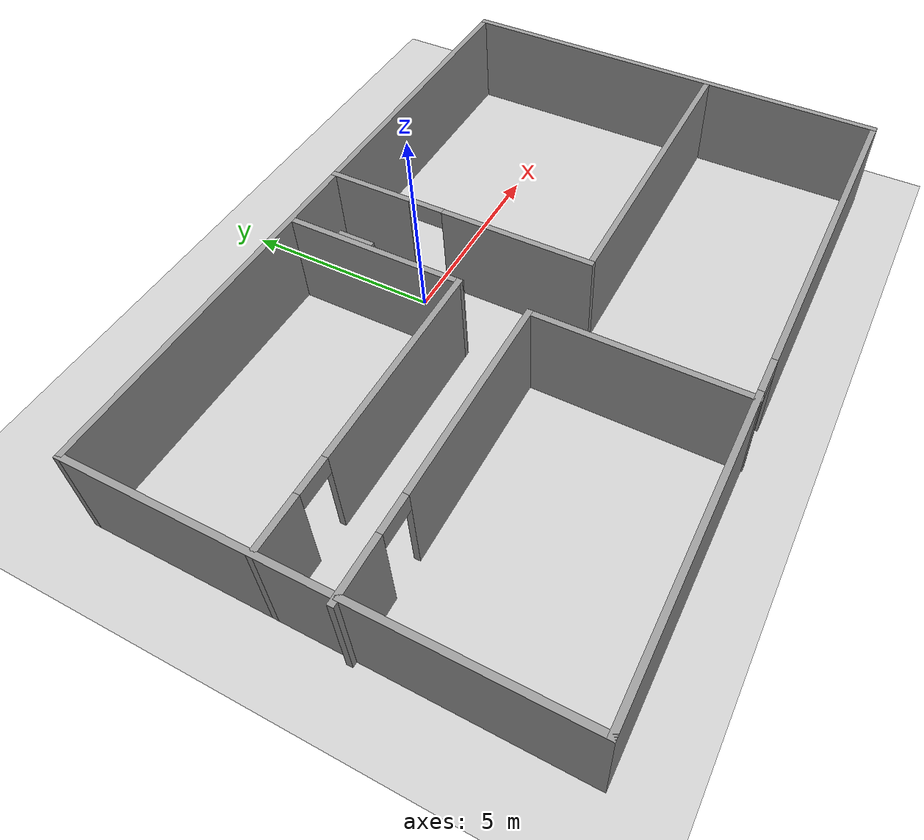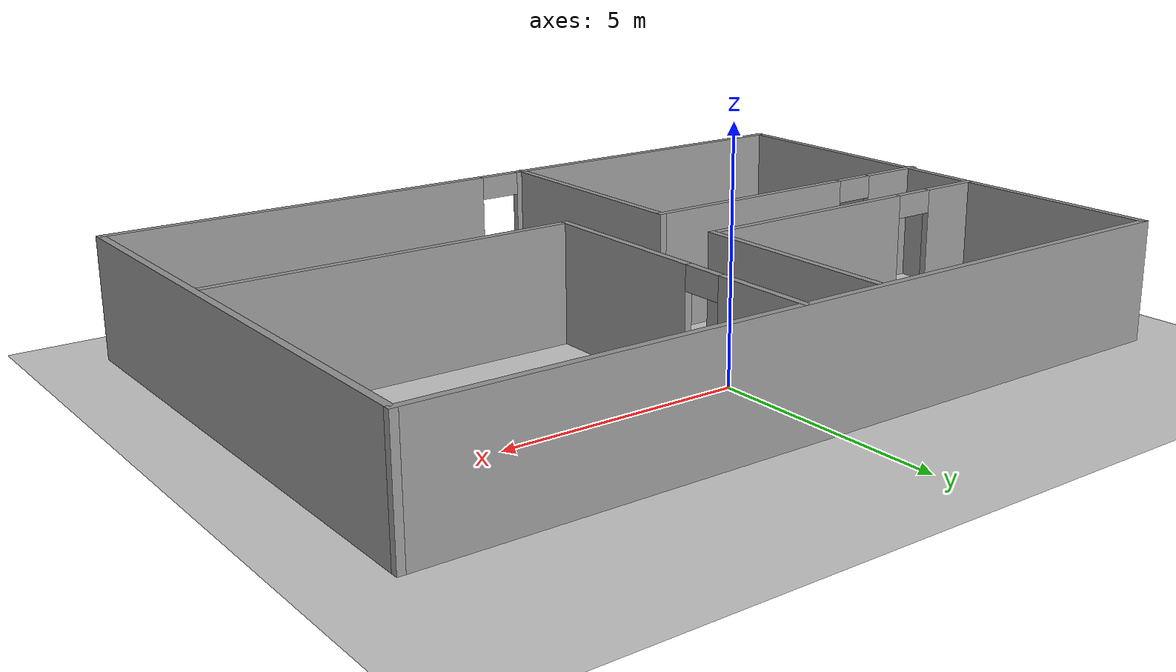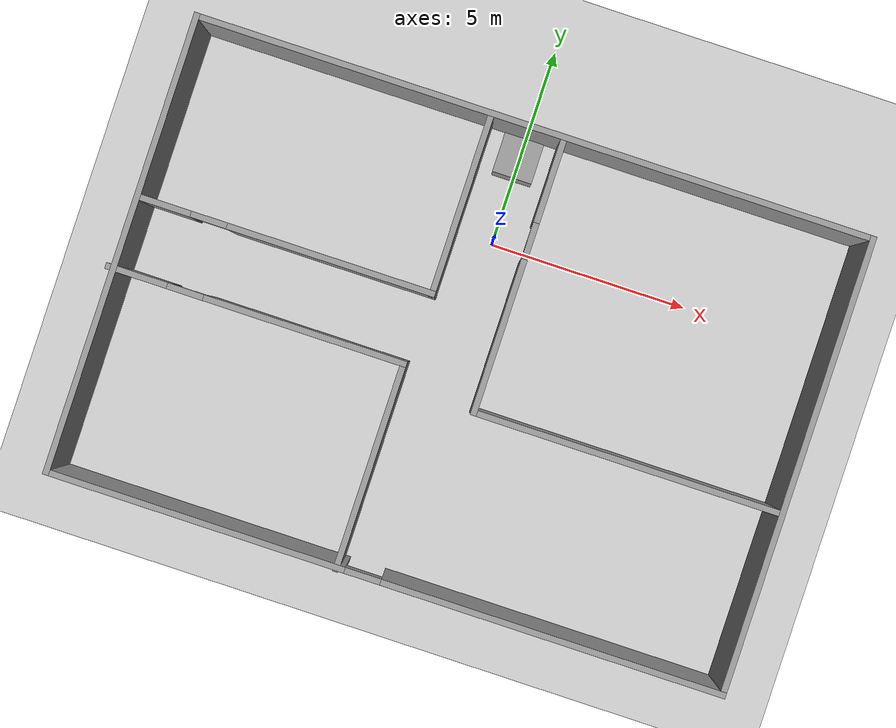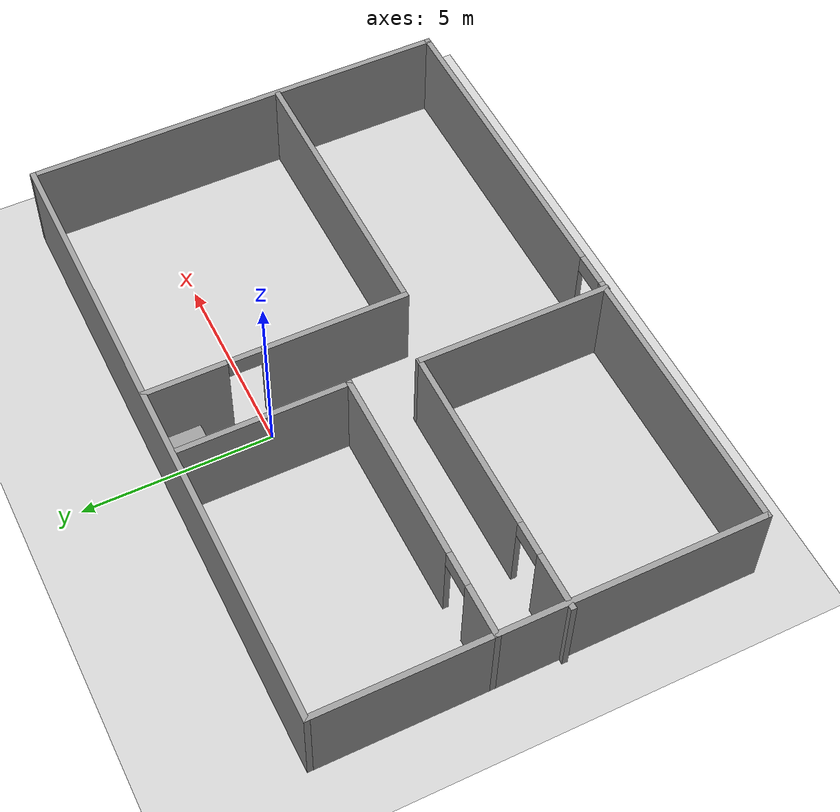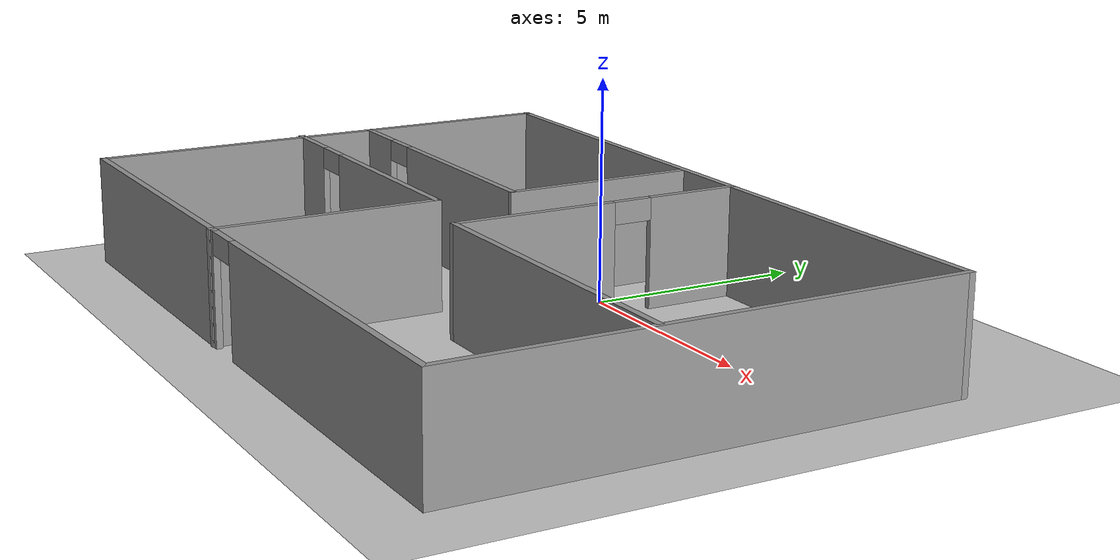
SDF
<sdf version="1.7">
 <world name="default">
  <light name="sun" type="directional">
   <pose>0 0 10 0 -0 0</pose>
   <diffuse>0.8 0.8 0.8 1</diffuse>
   <specular>0.2 0.2 0.2 1</specular>
   <attenuation>
    <range>1000</range>
    <constant>0.9</constant>
    <linear>0.01</linear>
    <quadratic>0.001</quadratic>
   </attenuation>
   <direction>-0.5 0.1 -0.9</direction>
   <spot><inner_angle>0</inner_angle><outer_angle>0</outer_angle><falloff>0</falloff></spot>
  </light>
  <model name="ground_plane">
   <static>1</static>
   <link name="link">
    <collision name="collision">
     <geometry><plane><normal>0 0 1</normal><size>100 100</size></plane></geometry>
     <surface><friction><ode><mu>100</mu><mu2>50</mu2></ode></friction></surface>
    </collision>
    <visual name="visual">
     <cast_shadows>0</cast_shadows>
     <geometry><plane><normal>0 0 1</normal><size>100 100</size></plane></geometry>
     <material>
      <script><uri>file://media/materials/scripts/gazebo.material</uri><name>Gazebo/Grey</name></script>
     </material>
    </visual>
   </link>
  </model>
  <gravity>0 0 -9.8</gravity>
  <magnetic_field>6e-06 2.3e-05 -4.2e-05</magnetic_field>
  <atmosphere type="adiabatic"/>
  <physics type="ode">
   <max_step_size>0.001</max_step_size>
   <real_time_factor>1</real_time_factor>
   <real_time_update_rate>1000</real_time_update_rate>
  </physics>
  <scene><ambient>0.4 0.4 0.4 1</ambient><background>0.7 0.7 0.7 1</background><shadows>1</shadows></scene>
  <audio><device>default</device></audio>
  <spherical_coordinates>
   <surface_model>EARTH_WGS84</surface_model>
   <latitude_deg>0</latitude_deg>
   <longitude_deg>0</longitude_deg>
   <elevation>0</elevation>
   <heading_deg>0</heading_deg>
  </spherical_coordinates>
  <model name="room">
   <pose>0.028107 -2.85954 0 0 -0 0</pose>
   <link name="Wall_20">
    <collision name="Wall_20_Collision">
     <geometry><box><size>11.5 0.15 2.5</size></box></geometry>
     <pose>0 0 1.25 0 -0 0</pose>
    </collision>
    <visual name="Wall_20_Visual">
     <pose>0 0 1.25 0 -0 0</pose>
     <geometry><box><size>11.5 0.15 2.5</size></box></geometry>
     <material>
      <script><uri>file://media/materials/scripts/gazebo.material</uri><name>Gazebo/Grey</name></script>
      <ambient>1 1 1 1</ambient>
     </material>
     <meta><layer>0</layer></meta>
    </visual>
    <pose>-8.36347 0.012922 0 0 -0 -1.5708</pose>
   </link>
   <link name="Wall_21">
    <pose>0.061528 -5.66208 0 0 -0 0</pose>
    <visual name="Wall_21_Visual_0">
     <pose>-4.74972 0 1.25 0 -0 0</pose>
     <geometry><box><size>7.50057 0.15 2.5</size></box></geometry>
     <material>
      <script><uri>file://media/materials/scripts/gazebo.material</uri><name>Gazebo/Grey</name></script>
      <ambient>1 1 1 1</ambient>
     </material>
     <meta><layer>0</layer></meta>
    </visual>
    <collision name="Wall_21_Collision_0">
     <geometry><box><size>7.50057 0.15 2.5</size></box></geometry>
     <pose>-4.74972 0 1.25 0 -0 0</pose>
    </collision>
    <visual name="Wall_21_Visual_1">
     <pose>4.20028 0 1.25 0 -0 0</pose>
     <geometry><box><size>8.59943 0.15 2.5</size></box></geometry>
     <material>
      <script><uri>file://media/materials/scripts/gazebo.material</uri><name>Gazebo/Grey</name></script>
      <ambient>1 1 1 1</ambient>
     </material>
     <meta><layer>0</layer></meta>
    </visual>
    <collision name="Wall_21_Collision_1">
     <geometry><box><size>8.59943 0.15 2.5</size></box></geometry>
     <pose>4.20028 0 1.25 0 -0 0</pose>
    </collision>
    <visual name="Wall_21_Visual_2">
     <pose>-0.549432 0 2.25 0 -0 0</pose>
     <geometry><box><size>0.9 0.15 0.5</size></box></geometry>
     <material>
      <script><uri>file://media/materials/scripts/gazebo.material</uri><name>Gazebo/Grey</name></script>
      <ambient>1 1 1 1</ambient>
     </material>
     <meta><layer>0</layer></meta>
    </visual>
    <collision name="Wall_21_Collision_2">
     <geometry><box><size>0.9 0.15 0.5</size></box></geometry>
     <pose>-0.549432 0 2.25 0 -0 0</pose>
    </collision>
   </link>
   <link name="Wall_22">
    <collision name="Wall_22_Collision">
     <geometry><box><size>11.5 0.15 2.5</size></box></geometry>
     <pose>0 0 1.25 0 -0 0</pose>
    </collision>
    <visual name="Wall_22_Visual">
     <pose>0 0 1.25 0 -0 0</pose>
     <geometry><box><size>11.5 0.15 2.5</size></box></geometry>
     <material>
      <script><uri>file://media/materials/scripts/gazebo.material</uri><name>Gazebo/Grey</name></script>
      <ambient>1 1 1 1</ambient>
     </material>
     <meta><layer>0</layer></meta>
    </visual>
    <pose>8.48653 0.012922 0 0 -0 1.5708</pose>
   </link>
   <link name="Wall_23">
    <collision name="Wall_23_Collision">
     <geometry><box><size>17 0.15 2.5</size></box></geometry>
     <pose>0 0 1.25 0 -0 0</pose>
    </collision>
    <visual name="Wall_23_Visual">
     <pose>0 0 1.25 0 -0 0</pose>
     <geometry><box><size>17 0.15 2.5</size></box></geometry>
     <material>
      <script><uri>file://media/materials/scripts/gazebo.material</uri><name>Gazebo/Grey</name></script>
      <ambient>1 1 1 1</ambient>
     </material>
     <meta><layer>0</layer></meta>
    </visual>
    <pose>0.061528 5.68792 0 0 -0 3.14159</pose>
   </link>
   <link name="Wall_25">
    <pose>-4.68847 1.19639 0 0 -0 0</pose>
    <visual name="Wall_25_Visual_0">
     <pose>-3.04535 0 1.25 0 -0 0</pose>
     <geometry><box><size>1.40931 0.15 2.5</size></box></geometry>
     <material>
      <script><uri>file://media/materials/scripts/gazebo.material</uri><name>Gazebo/Grey</name></script>
      <ambient>1 1 1 1</ambient>
     </material>
     <meta><layer>0</layer></meta>
    </visual>
    <collision name="Wall_25_Collision_0">
     <geometry><box><size>1.40931 0.15 2.5</size></box></geometry>
     <pose>-3.04535 0 1.25 0 -0 0</pose>
    </collision>
    <visual name="Wall_25_Visual_1">
     <pose>1.15465 0 1.25 0 -0 0</pose>
     <geometry><box><size>5.19069 0.15 2.5</size></box></geometry>
     <material>
      <script><uri>file://media/materials/scripts/gazebo.material</uri><name>Gazebo/Grey</name></script>
      <ambient>1 1 1 1</ambient>
     </material>
     <meta><layer>0</layer></meta>
    </visual>
    <collision name="Wall_25_Collision_1">
     <geometry><box><size>5.19069 0.15 2.5</size></box></geometry>
     <pose>1.15465 0 1.25 0 -0 0</pose>
    </collision>
    <visual name="Wall_25_Visual_2">
     <pose>-1.89069 0 2.25 0 -0 0</pose>
     <geometry><box><size>0.9 0.15 0.5</size></box></geometry>
     <material>
      <script><uri>file://media/materials/scripts/gazebo.material</uri><name>Gazebo/Grey</name></script>
      <ambient>1 1 1 1</ambient>
     </material>
     <meta><layer>0</layer></meta>
    </visual>
    <collision name="Wall_25_Collision_2">
     <geometry><box><size>0.9 0.15 0.5</size></box></geometry>
     <pose>-1.89069 0 2.25 0 -0 0</pose>
    </collision>
   </link>
   <link name="Wall_26">
    <collision name="Wall_26_Collision">
     <geometry><box><size>4.5 0.15 2.5</size></box></geometry>
     <pose>0 0 1.25 0 -0 0</pose>
    </collision>
    <visual name="Wall_26_Visual">
     <pose>0 0 1.25 0 -0 0</pose>
     <geometry><box><size>4.5 0.15 2.5</size></box></geometry>
     <material>
      <script><uri>file://media/materials/scripts/gazebo.material</uri><name>Gazebo/Grey</name></script>
      <ambient>1 1 1 1</ambient>
     </material>
     <meta><layer>0</layer></meta>
    </visual>
    <pose>-1.01347 3.37139 0 0 -0 1.5708</pose>
   </link>
   <link name="Wall_28">
    <pose>-4.81153 -0.587922 0 0 -0 0</pose>
    <visual name="Wall_28_Visual_0">
     <pose>-2.98382 0 1.25 0 -0 0</pose>
     <geometry><box><size>1.53236 0.15 2.5</size></box></geometry>
     <material>
      <script><uri>file://media/materials/scripts/gazebo.material</uri><name>Gazebo/Grey</name></script>
      <ambient>1 1 1 1</ambient>
     </material>
     <meta><layer>0</layer></meta>
    </visual>
    <collision name="Wall_28_Collision_0">
     <geometry><box><size>1.53236 0.15 2.5</size></box></geometry>
     <pose>-2.98382 0 1.25 0 -0 0</pose>
    </collision>
    <visual name="Wall_28_Visual_1">
     <pose>1.21618 0 1.25 0 -0 0</pose>
     <geometry><box><size>5.06764 0.15 2.5</size></box></geometry>
     <material>
      <script><uri>file://media/materials/scripts/gazebo.material</uri><name>Gazebo/Grey</name></script>
      <ambient>1 1 1 1</ambient>
     </material>
     <meta><layer>0</layer></meta>
    </visual>
    <collision name="Wall_28_Collision_1">
     <geometry><box><size>5.06764 0.15 2.5</size></box></geometry>
     <pose>1.21618 0 1.25 0 -0 0</pose>
    </collision>
    <visual name="Wall_28_Visual_2">
     <pose>-1.76764 0 2.25 0 -0 0</pose>
     <geometry><box><size>0.9 0.15 0.5</size></box></geometry>
     <material>
      <script><uri>file://media/materials/scripts/gazebo.material</uri><name>Gazebo/Grey</name></script>
      <ambient>1 1 1 1</ambient>
     </material>
     <meta><layer>0</layer></meta>
    </visual>
    <collision name="Wall_28_Collision_2">
     <geometry><box><size>0.9 0.15 0.5</size></box></geometry>
     <pose>-1.76764 0 2.25 0 -0 0</pose>
    </collision>
   </link>
   <link name="Wall_29">
    <collision name="Wall_29_Collision">
     <geometry><box><size>5.25 0.15 2.5</size></box></geometry>
     <pose>0 0 1.25 0 -0 0</pose>
    </collision>
    <visual name="Wall_29_Visual">
     <pose>0 0 1.25 0 -0 0</pose>
     <geometry><box><size>5.25 0.15 2.5</size></box></geometry>
     <material>
      <script><uri>file://media/materials/scripts/gazebo.material</uri><name>Gazebo/Grey</name></script>
      <ambient>1 1 1 1</ambient>
     </material>
     <meta><layer>0</layer></meta>
    </visual>
    <pose>-1.13653 -3.13792 0 0 -0 -1.5708</pose>
   </link>
   <link name="Wall_31">
    <pose>0.804181 2.26292 0 0 -0 -1.5708</pose>
    <visual name="Wall_31_Visual_0">
     <pose>-2.39541 0 1.25 0 -0 0</pose>
     <geometry><box><size>2.20917 0.15 2.5</size></box></geometry>
     <material>
      <script><uri>file://media/materials/scripts/gazebo.material</uri><name>Gazebo/Grey</name></script>
      <ambient>1 1 1 1</ambient>
     </material>
     <meta><layer>0</layer></meta>
    </visual>
    <collision name="Wall_31_Collision_0">
     <geometry><box><size>2.20917 0.15 2.5</size></box></geometry>
     <pose>-2.39541 0 1.25 0 -0 0</pose>
    </collision>
    <visual name="Wall_31_Visual_1">
     <pose>1.55459 0 1.25 0 -0 0</pose>
     <geometry><box><size>3.89083 0.15 2.5</size></box></geometry>
     <material>
      <script><uri>file://media/materials/scripts/gazebo.material</uri><name>Gazebo/Grey</name></script>
      <ambient>1 1 1 1</ambient>
     </material>
     <meta><layer>0</layer></meta>
    </visual>
    <collision name="Wall_31_Collision_1">
     <geometry><box><size>3.89083 0.15 2.5</size></box></geometry>
     <pose>1.55459 0 1.25 0 -0 0</pose>
    </collision>
    <visual name="Wall_31_Visual_2">
     <pose>-0.840829 0 2.25 0 -0 0</pose>
     <geometry><box><size>0.9 0.15 0.5</size></box></geometry>
     <material>
      <script><uri>file://media/materials/scripts/gazebo.material</uri><name>Gazebo/Grey</name></script>
      <ambient>1 1 1 1</ambient>
     </material>
     <meta><layer>0</layer></meta>
    </visual>
    <collision name="Wall_31_Collision_2">
     <geometry><box><size>0.9 0.15 0.5</size></box></geometry>
     <pose>-0.840829 0 2.25 0 -0 0</pose>
    </collision>
   </link>
   <link name="Wall_32">
    <collision name="Wall_32_Collision">
     <geometry><box><size>7.75 0.15 2.5</size></box></geometry>
     <pose>0 0 1.25 0 -0 0</pose>
    </collision>
    <visual name="Wall_32_Visual">
     <pose>0 0 1.25 0 -0 0</pose>
     <geometry><box><size>7.75 0.15 2.5</size></box></geometry>
     <material>
      <script><uri>file://media/materials/scripts/gazebo.material</uri><name>Gazebo/Grey</name></script>
      <ambient>1 1 1 1</ambient>
     </material>
     <meta><layer>0</layer></meta>
    </visual>
    <pose>4.60418 -1.16208 0 0 -0 0</pose>
   </link>
   <static>1</static>
  </model>
  <model name="unit_box">
   <pose>-0.062455 2.15762 0.5 0 -0 0</pose>
   <link name="link">
    <inertial>
     <mass>1</mass>
     <inertia>
      <ixx>0.166667</ixx>
      <ixy>0</ixy>
      <ixz>0</ixz>
      <iyy>0.166667</iyy>
      <iyz>0</iyz>
      <izz>0.166667</izz>
     </inertia>
    </inertial>
    <collision name="collision"><geometry><box><size>1 1 1</size></box></geometry></collision>
    <visual name="visual">
     <geometry><box><size>1 1 1</size></box></geometry>
     <material>
      <script><name>Gazebo/Grey</name><uri>file://media/materials/scripts/gazebo.material</uri></script>
     </material>
    </visual>
   </link>
  </model>
 </world>
</sdf>
